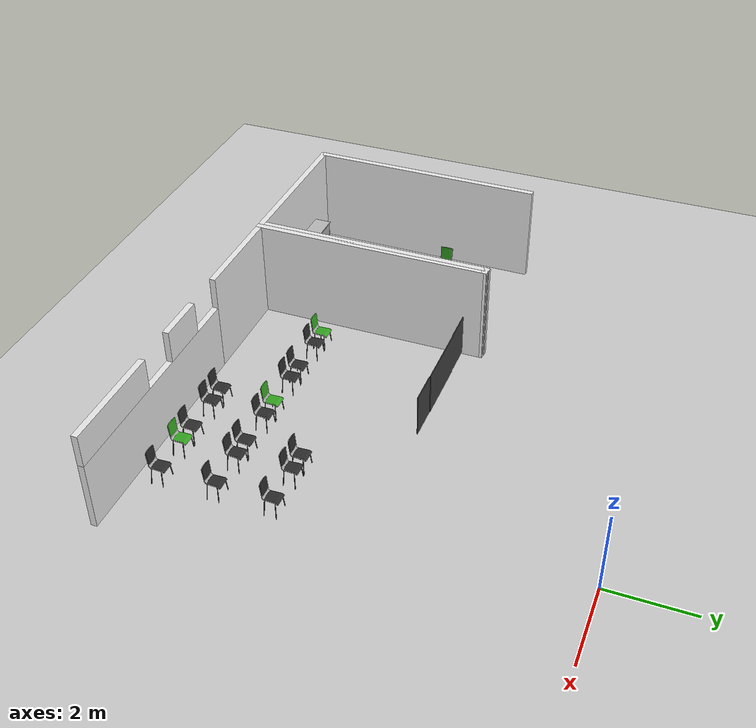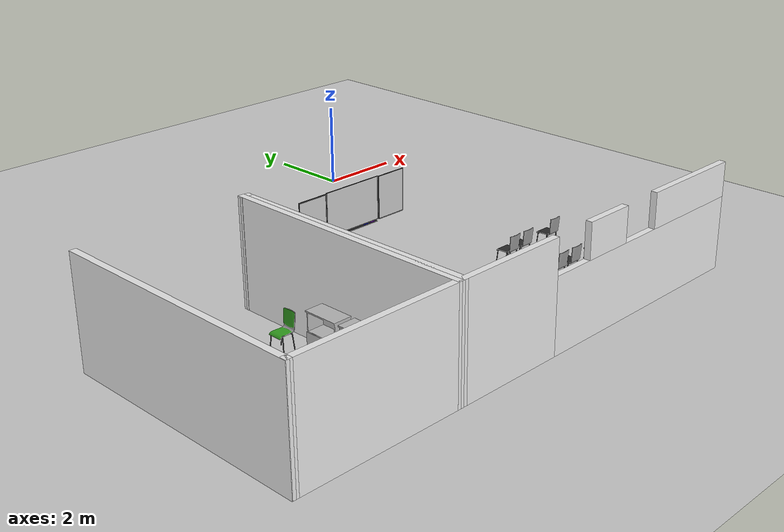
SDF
<sdf version="1.6">
 <world name="default">
  <model name="ground_plane">
   <static>1</static>
   <link name="link">
    <collision name="collision">
     <geometry><plane><normal>0 0 1</normal><size>100 100</size></plane></geometry>
     <surface><friction><ode><mu>100</mu><mu2>50</mu2></ode></friction></surface>
    </collision>
    <visual name="visual">
     <cast_shadows>0</cast_shadows>
     <geometry><plane><normal>0 0 1</normal><size>100 100</size></plane></geometry>
     <material>
      <script><uri>file://media/materials/scripts/gazebo.material</uri><name>Gazebo/Grey</name></script>
     </material>
    </visual>
   </link>
  </model>
  <model name="ucu_basic_frame.world">
   <link name="Wall_188">
    <pose>-7.05036 -11.0083 0 0 0 -1.56854</pose>
    <visual name="Wall_188_Visual">
     <pose>0 0 1.25 0 -0 0</pose>
     <geometry><box><size>5.98201 0.15 2.5</size></box></geometry>
     <material>
      <script><uri>file://media/materials/scripts/gazebo.material</uri><name>Gazebo/White</name></script>
      <ambient>0 1 0 1</ambient>
      <diffuse>1 1 1 1</diffuse>
      <specular>0 0 0 1</specular>
      <emissive>0 0 0 1</emissive>
     </material>
     <meta><layer>0</layer></meta>
    </visual>
    <collision name="Wall_188_Collision">
     <pose>0 0 1.25 0 -0 0</pose>
     <geometry><box><size>5.98201 0.15 2.5</size></box></geometry>
     <surface>
      <friction>
       <ode><mu>1</mu><mu2>1</mu2><fdir1>0 0 0</fdir1><slip1>0</slip1><slip2>0</slip2></ode>
       <torsional>
        <coefficient>1</coefficient>
        <patch_radius>0</patch_radius>
        <surface_radius>0</surface_radius>
        <use_patch_radius>1</use_patch_radius>
        <ode><slip>0</slip></ode>
       </torsional>
      </friction>
      <bounce><restitution_coefficient>0</restitution_coefficient><threshold>1e+06</threshold></bounce>
      <contact>
       <collide_without_contact>0</collide_without_contact>
       <collide_without_contact_bitmask>1</collide_without_contact_bitmask>
       <collide_bitmask>1</collide_bitmask>
       <ode>
        <soft_cfm>0</soft_cfm>
        <soft_erp>0.2</soft_erp>
        <kp>1e+13</kp>
        <kd>1</kd>
        <max_vel>0.01</max_vel>
        <min_depth>0</min_depth>
       </ode>
       <bullet>
        <split_impulse>1</split_impulse>
        <split_impulse_penetration_threshold>-0.01</split_impulse_penetration_threshold>
        <soft_cfm>0</soft_cfm>
        <soft_erp>0.2</soft_erp>
        <kp>1e+13</kp>
        <kd>1</kd>
       </bullet>
      </contact>
     </surface>
    </collision>
   </link>
   <link name="Wall_189">
    <pose>-2.90346 -13.9177 0 0 -0 0.00159</pose>
    <visual name="Wall_189_Visual_0">
     <pose>-2.9043 0 1.25 0 -0 0</pose>
     <geometry><box><size>2.62204 0.15 2.5</size></box></geometry>
     <material>
      <script><uri>file://media/materials/scripts/gazebo.material</uri><name>Gazebo/White</name></script>
      <ambient>1 1 1 1</ambient>
      <diffuse>1 1 1 1</diffuse>
      <specular>0 0 0 1</specular>
      <emissive>0 0 0 1</emissive>
     </material>
     <meta><layer>0</layer></meta>
    </visual>
    <visual name="Wall_189_Visual_1">
     <pose>1.31102 0 0.85 0 -0 0</pose>
     <geometry><box><size>5.8086 0.15 1.7</size></box></geometry>
     <material>
      <script><uri>file://media/materials/scripts/gazebo.material</uri><name>Gazebo/White</name></script>
      <ambient>1 1 1 1</ambient>
      <diffuse>1 1 1 1</diffuse>
      <specular>0 0 0 1</specular>
      <emissive>0 0 0 1</emissive>
     </material>
     <meta><layer>0</layer></meta>
    </visual>
    <visual name="Wall_189_Visual_2">
     <pose>0.003473 0 2.1 0 -0 0</pose>
     <geometry><box><size>1.19351 0.15 0.8</size></box></geometry>
     <material>
      <script><uri>file://media/materials/scripts/gazebo.material</uri><name>Gazebo/White</name></script>
      <ambient>1 1 1 1</ambient>
      <diffuse>1 1 1 1</diffuse>
      <specular>0 0 0 1</specular>
      <emissive>0 0 0 1</emissive>
     </material>
     <meta><layer>0</layer></meta>
    </visual>
    <visual name="Wall_189_Visual_3">
     <pose>2.90777 0 2.1 0 -0 0</pose>
     <geometry><box><size>2.6151 0.15 0.8</size></box></geometry>
     <material>
      <script><uri>file://media/materials/scripts/gazebo.material</uri><name>Gazebo/White</name></script>
      <ambient>1 1 1 1</ambient>
      <diffuse>1 1 1 1</diffuse>
      <specular>0 0 0 1</specular>
      <emissive>0 0 0 1</emissive>
     </material>
     <meta><layer>0</layer></meta>
    </visual>
    <collision name="Wall_189_Collision_0">
     <pose>-2.9043 0 1.25 0 -0 0</pose>
     <geometry><box><size>2.62204 0.15 2.5</size></box></geometry>
     <surface>
      <friction>
       <ode><mu>1</mu><mu2>1</mu2><fdir1>0 0 0</fdir1><slip1>0</slip1><slip2>0</slip2></ode>
       <torsional>
        <coefficient>1</coefficient>
        <patch_radius>0</patch_radius>
        <surface_radius>0</surface_radius>
        <use_patch_radius>1</use_patch_radius>
        <ode><slip>0</slip></ode>
       </torsional>
      </friction>
      <bounce><restitution_coefficient>0</restitution_coefficient><threshold>1e+06</threshold></bounce>
      <contact>
       <collide_without_contact>0</collide_without_contact>
       <collide_without_contact_bitmask>1</collide_without_contact_bitmask>
       <collide_bitmask>1</collide_bitmask>
       <ode>
        <soft_cfm>0</soft_cfm>
        <soft_erp>0.2</soft_erp>
        <kp>1e+13</kp>
        <kd>1</kd>
        <max_vel>0.01</max_vel>
        <min_depth>0</min_depth>
       </ode>
       <bullet>
        <split_impulse>1</split_impulse>
        <split_impulse_penetration_threshold>-0.01</split_impulse_penetration_threshold>
        <soft_cfm>0</soft_cfm>
        <soft_erp>0.2</soft_erp>
        <kp>1e+13</kp>
        <kd>1</kd>
       </bullet>
      </contact>
     </surface>
    </collision>
    <collision name="Wall_189_Collision_1">
     <pose>1.31102 0 0.85 0 -0 0</pose>
     <geometry><box><size>5.8086 0.15 1.7</size></box></geometry>
     <surface>
      <friction>
       <ode><mu>1</mu><mu2>1</mu2><fdir1>0 0 0</fdir1><slip1>0</slip1><slip2>0</slip2></ode>
       <torsional>
        <coefficient>1</coefficient>
        <patch_radius>0</patch_radius>
        <surface_radius>0</surface_radius>
        <use_patch_radius>1</use_patch_radius>
        <ode><slip>0</slip></ode>
       </torsional>
      </friction>
      <bounce><restitution_coefficient>0</restitution_coefficient><threshold>1e+06</threshold></bounce>
      <contact>
       <collide_without_contact>0</collide_without_contact>
       <collide_without_contact_bitmask>1</collide_without_contact_bitmask>
       <collide_bitmask>1</collide_bitmask>
       <ode>
        <soft_cfm>0</soft_cfm>
        <soft_erp>0.2</soft_erp>
        <kp>1e+13</kp>
        <kd>1</kd>
        <max_vel>0.01</max_vel>
        <min_depth>0</min_depth>
       </ode>
       <bullet>
        <split_impulse>1</split_impulse>
        <split_impulse_penetration_threshold>-0.01</split_impulse_penetration_threshold>
        <soft_cfm>0</soft_cfm>
        <soft_erp>0.2</soft_erp>
        <kp>1e+13</kp>
        <kd>1</kd>
       </bullet>
      </contact>
     </surface>
    </collision>
    <collision name="Wall_189_Collision_3">
     <pose>2.90777 0 2.1 0 -0 0</pose>
     <geometry><box><size>2.6151 0.15 0.8</size></box></geometry>
     <surface>
      <friction>
       <ode><mu>1</mu><mu2>1</mu2><fdir1>0 0 0</fdir1><slip1>0</slip1><slip2>0</slip2></ode>
       <torsional>
        <coefficient>1</coefficient>
        <patch_radius>0</patch_radius>
        <surface_radius>0</surface_radius>
        <use_patch_radius>1</use_patch_radius>
        <ode><slip>0</slip></ode>
       </torsional>
      </friction>
      <bounce><restitution_coefficient>0</restitution_coefficient><threshold>1e+06</threshold></bounce>
      <contact>
       <collide_without_contact>0</collide_without_contact>
       <collide_without_contact_bitmask>1</collide_without_contact_bitmask>
       <collide_bitmask>1</collide_bitmask>
       <ode>
        <soft_cfm>0</soft_cfm>
        <soft_erp>0.2</soft_erp>
        <kp>1e+13</kp>
        <kd>1</kd>
        <max_vel>0.01</max_vel>
        <min_depth>0</min_depth>
       </ode>
       <bullet>
        <split_impulse>1</split_impulse>
        <split_impulse_penetration_threshold>-0.01</split_impulse_penetration_threshold>
        <soft_cfm>0</soft_cfm>
        <soft_erp>0.2</soft_erp>
        <kp>1e+13</kp>
        <kd>1</kd>
       </bullet>
      </contact>
     </surface>
    </collision>
    <collision name="Wall_189_Collision_2">
     <pose>0.003473 0 2.1 0 -0 0</pose>
     <geometry><box><size>1.19351 0.15 0.8</size></box></geometry>
     <surface>
      <friction>
       <ode><mu>1</mu><mu2>1</mu2><fdir1>0 0 0</fdir1><slip1>0</slip1><slip2>0</slip2></ode>
       <torsional>
        <coefficient>1</coefficient>
        <patch_radius>0</patch_radius>
        <surface_radius>0</surface_radius>
        <use_patch_radius>1</use_patch_radius>
        <ode><slip>0</slip></ode>
       </torsional>
      </friction>
      <bounce><restitution_coefficient>0</restitution_coefficient><threshold>1e+06</threshold></bounce>
      <contact>
       <collide_without_contact>0</collide_without_contact>
       <collide_without_contact_bitmask>1</collide_without_contact_bitmask>
       <collide_bitmask>1</collide_bitmask>
       <ode>
        <soft_cfm>0</soft_cfm>
        <soft_erp>0.2</soft_erp>
        <kp>1e+13</kp>
        <kd>1</kd>
        <max_vel>0.01</max_vel>
        <min_depth>0</min_depth>
       </ode>
       <bullet>
        <split_impulse>1</split_impulse>
        <split_impulse_penetration_threshold>-0.01</split_impulse_penetration_threshold>
        <soft_cfm>0</soft_cfm>
        <soft_erp>0.2</soft_erp>
        <kp>1e+13</kp>
        <kd>1</kd>
       </bullet>
      </contact>
     </surface>
    </collision>
   </link>
   <link name="Wall_200">
    <pose>-7.1096 -8.08571 0 0 -0 3.01724</pose>
    <visual name="Wall_200_Visual">
     <pose>0 0 1.25 0 -0 0</pose>
     <geometry><box><size>0.256138 0.15 2.5</size></box></geometry>
     <material>
      <script><uri>file://media/materials/scripts/gazebo.material</uri><name>Gazebo/White</name></script>
      <ambient>1 1 1 1</ambient>
      <diffuse>1 1 1 1</diffuse>
      <specular>0 0 0 1</specular>
      <emissive>0 0 0 1</emissive>
     </material>
     <meta><layer>0</layer></meta>
    </visual>
    <collision name="Wall_200_Collision">
     <pose>0 0 1.25 0 -0 0</pose>
     <geometry><box><size>0.256138 0.15 2.5</size></box></geometry>
     <surface>
      <friction>
       <ode><mu>1</mu><mu2>1</mu2><fdir1>0 0 0</fdir1><slip1>0</slip1><slip2>0</slip2></ode>
       <torsional>
        <coefficient>1</coefficient>
        <patch_radius>0</patch_radius>
        <surface_radius>0</surface_radius>
        <use_patch_radius>1</use_patch_radius>
        <ode><slip>0</slip></ode>
       </torsional>
      </friction>
      <bounce><restitution_coefficient>0</restitution_coefficient><threshold>1e+06</threshold></bounce>
      <contact>
       <collide_without_contact>0</collide_without_contact>
       <collide_without_contact_bitmask>1</collide_without_contact_bitmask>
       <collide_bitmask>1</collide_bitmask>
       <ode>
        <soft_cfm>0</soft_cfm>
        <soft_erp>0.2</soft_erp>
        <kp>1e+13</kp>
        <kd>1</kd>
        <max_vel>0.01</max_vel>
        <min_depth>0</min_depth>
       </ode>
       <bullet>
        <split_impulse>1</split_impulse>
        <split_impulse_penetration_threshold>-0.01</split_impulse_penetration_threshold>
        <soft_cfm>0</soft_cfm>
        <soft_erp>0.2</soft_erp>
        <kp>1e+13</kp>
        <kd>1</kd>
       </bullet>
      </contact>
     </surface>
    </collision>
   </link>
   <link name="Wall_201">
    <pose>-7.16884 -11.0017 0 0 0 -1.57305</pose>
    <visual name="Wall_201_Visual">
     <pose>0 0 1.25 0 -0 0</pose>
     <geometry><box><size>5.99517 0.15 2.5</size></box></geometry>
     <material>
      <script><uri>file://media/materials/scripts/gazebo.material</uri><name>Gazebo/White</name></script>
      <ambient>1 1 1 1</ambient>
      <diffuse>1 1 1 1</diffuse>
      <specular>0 0 0 1</specular>
      <emissive>0 0 0 1</emissive>
     </material>
     <meta><layer>0</layer></meta>
    </visual>
    <collision name="Wall_201_Collision">
     <pose>0 0 1.25 0 -0 0</pose>
     <geometry><box><size>5.99517 0.15 2.5</size></box></geometry>
     <surface>
      <friction>
       <ode><mu>1</mu><mu2>1</mu2><fdir1>0 0 0</fdir1><slip1>0</slip1><slip2>0</slip2></ode>
       <torsional>
        <coefficient>1</coefficient>
        <patch_radius>0</patch_radius>
        <surface_radius>0</surface_radius>
        <use_patch_radius>1</use_patch_radius>
        <ode><slip>0</slip></ode>
       </torsional>
      </friction>
      <bounce><restitution_coefficient>0</restitution_coefficient><threshold>1e+06</threshold></bounce>
      <contact>
       <collide_without_contact>0</collide_without_contact>
       <collide_without_contact_bitmask>1</collide_without_contact_bitmask>
       <collide_bitmask>1</collide_bitmask>
       <ode>
        <soft_cfm>0</soft_cfm>
        <soft_erp>0.2</soft_erp>
        <kp>1e+13</kp>
        <kd>1</kd>
        <max_vel>0.01</max_vel>
        <min_depth>0</min_depth>
       </ode>
       <bullet>
        <split_impulse>1</split_impulse>
        <split_impulse_penetration_threshold>-0.01</split_impulse_penetration_threshold>
        <soft_cfm>0</soft_cfm>
        <soft_erp>0.2</soft_erp>
        <kp>1e+13</kp>
        <kd>1</kd>
       </bullet>
      </contact>
     </surface>
    </collision>
   </link>
   <link name="Wall_202">
    <pose>-9.0909 -13.9177 0 0 -0 3.13816</pose>
    <visual name="Wall_202_Visual">
     <pose>0 0 1.25 0 -0 0</pose>
     <geometry><box><size>3.98095 0.15 2.5</size></box></geometry>
     <material>
      <script><uri>file://media/materials/scripts/gazebo.material</uri><name>Gazebo/White</name></script>
      <ambient>1 1 1 1</ambient>
      <diffuse>1 1 1 1</diffuse>
      <specular>0 0 0 1</specular>
      <emissive>0 0 0 1</emissive>
     </material>
     <meta><layer>0</layer></meta>
    </visual>
    <collision name="Wall_202_Collision">
     <pose>0 0 1.25 0 -0 0</pose>
     <geometry><box><size>3.98095 0.15 2.5</size></box></geometry>
     <surface>
      <friction>
       <ode><mu>1</mu><mu2>1</mu2><fdir1>0 0 0</fdir1><slip1>0</slip1><slip2>0</slip2></ode>
       <torsional>
        <coefficient>1</coefficient>
        <patch_radius>0</patch_radius>
        <surface_radius>0</surface_radius>
        <use_patch_radius>1</use_patch_radius>
        <ode><slip>0</slip></ode>
       </torsional>
      </friction>
      <bounce><restitution_coefficient>0</restitution_coefficient><threshold>1e+06</threshold></bounce>
      <contact>
       <collide_without_contact>0</collide_without_contact>
       <collide_without_contact_bitmask>1</collide_without_contact_bitmask>
       <collide_bitmask>1</collide_bitmask>
       <ode>
        <soft_cfm>0</soft_cfm>
        <soft_erp>0.2</soft_erp>
        <kp>1e+13</kp>
        <kd>1</kd>
        <max_vel>0.01</max_vel>
        <min_depth>0</min_depth>
       </ode>
       <bullet>
        <split_impulse>1</split_impulse>
        <split_impulse_penetration_threshold>-0.01</split_impulse_penetration_threshold>
        <soft_cfm>0</soft_cfm>
        <soft_erp>0.2</soft_erp>
        <kp>1e+13</kp>
        <kd>1</kd>
       </bullet>
      </contact>
     </surface>
    </collision>
   </link>
   <link name="Wall_203">
    <pose>-11.0064 -10.9951 0 0 -0 1.56628</pose>
    <visual name="Wall_203_Visual">
     <pose>0 0 1.25 0 -0 0</pose>
     <geometry><box><size>5.98199 0.15 2.5</size></box></geometry>
     <material>
      <script><uri>file://media/materials/scripts/gazebo.material</uri><name>Gazebo/White</name></script>
      <ambient>1 1 1 1</ambient>
      <diffuse>1 1 1 1</diffuse>
      <specular>0 0 0 1</specular>
      <emissive>0 0 0 1</emissive>
     </material>
     <meta><layer>0</layer></meta>
    </visual>
    <collision name="Wall_203_Collision">
     <pose>0 0 1.25 0 -0 0</pose>
     <geometry><box><size>5.98199 0.15 2.5</size></box></geometry>
     <surface>
      <friction>
       <ode><mu>1</mu><mu2>1</mu2><fdir1>0 0 0</fdir1><slip1>0</slip1><slip2>0</slip2></ode>
       <torsional>
        <coefficient>1</coefficient>
        <patch_radius>0</patch_radius>
        <surface_radius>0</surface_radius>
        <use_patch_radius>1</use_patch_radius>
        <ode><slip>0</slip></ode>
       </torsional>
      </friction>
      <bounce><restitution_coefficient>0</restitution_coefficient><threshold>1e+06</threshold></bounce>
      <contact>
       <collide_without_contact>0</collide_without_contact>
       <collide_without_contact_bitmask>1</collide_without_contact_bitmask>
       <collide_bitmask>1</collide_bitmask>
       <ode>
        <soft_cfm>0</soft_cfm>
        <soft_erp>0.2</soft_erp>
        <kp>1e+13</kp>
        <kd>1</kd>
        <max_vel>0.01</max_vel>
        <min_depth>0</min_depth>
       </ode>
       <bullet>
        <split_impulse>1</split_impulse>
        <split_impulse_penetration_threshold>-0.01</split_impulse_penetration_threshold>
        <soft_cfm>0</soft_cfm>
        <soft_erp>0.2</soft_erp>
        <kp>1e+13</kp>
        <kd>1</kd>
       </bullet>
      </contact>
     </surface>
    </collision>
   </link>
   <static>1</static>
   <pose>0.7577 3.6363 0 0 -0 0</pose>
  </model>
  <model name="locker_009_1">
   <pose>-6.70998 -7.24002 0.450774 0 0 -1.57003</pose>
   <static>0</static>
   <link name="model_body">
    <visual name="visual">
     <geometry>
      <mesh><uri>model://robert_gazebo/meshes/locker_008_visual.dae</uri><scale>1 1 1</scale></mesh>
     </geometry>
    </visual>
    <collision name="collision">
     <geometry>
      <mesh><uri>model://robert_gazebo/meshes/locker_008_collision.dae</uri><scale>1 1 1</scale></mesh>
     </geometry>
    </collision>
    <inertial>
     <inertia><ixx>0.69</ixx><ixy>0</ixy><ixz>0</ixz><iyy>1.19</iyy><iyz>0</iyz><izz>0.78</izz></inertia>
     <mass>10</mass>
    </inertial>
   </link>
  </model>
  <model name="locker_009_2">
   <pose>-6.70998 -8.15002 0.450774 0 0 -1.57003</pose>
   <static>0</static>
   <link name="model_body">
    <visual name="visual">
     <geometry>
      <mesh><uri>model://robert_gazebo/meshes/locker_008_visual.dae</uri><scale>1 1 1</scale></mesh>
     </geometry>
    </visual>
    <collision name="collision">
     <geometry>
      <mesh><uri>model://robert_gazebo/meshes/locker_008_collision.dae</uri><scale>1 1 1</scale></mesh>
     </geometry>
    </collision>
    <inertial>
     <inertia><ixx>0.69</ixx><ixy>0</ixy><ixz>0</ixz><iyy>1.19</iyy><iyz>0</iyz><izz>0.78</izz></inertia>
     <mass>10</mass>
    </inertial>
   </link>
  </model>
  <model name="locker_009_3">
   <pose>-8.9789 -9.99697 0.450774 0 -0 3.13814</pose>
   <static>0</static>
   <link name="model_body">
    <visual name="visual">
     <geometry>
      <mesh><uri>model://robert_gazebo/meshes/locker_008_visual.dae</uri><scale>1 1 1</scale></mesh>
     </geometry>
    </visual>
    <collision name="collision">
     <geometry>
      <mesh><uri>model://robert_gazebo/meshes/locker_008_collision.dae</uri><scale>1 1 1</scale></mesh>
     </geometry>
    </collision>
    <inertial>
     <inertia><ixx>0.69</ixx><ixy>0</ixy><ixz>0</ixz><iyy>1.19</iyy><iyz>0</iyz><izz>0.78</izz></inertia>
     <mass>10</mass>
    </inertial>
   </link>
  </model>
  <model name="locker_009_4">
   <pose>-8.08001 -9.985 0.450775 5e-06 -0 -3.14</pose>
   <static>0</static>
   <link name="model_body">
    <visual name="visual">
     <geometry>
      <mesh><uri>model://robert_gazebo/meshes/locker_008_visual.dae</uri><scale>1 1 1</scale></mesh>
     </geometry>
    </visual>
    <collision name="collision">
     <geometry>
      <mesh><uri>model://robert_gazebo/meshes/locker_008_collision.dae</uri><scale>1 1 1</scale></mesh>
     </geometry>
    </collision>
    <inertial>
     <inertia><ixx>0.69</ixx><ixy>0</ixy><ixz>0</ixz><iyy>1.19</iyy><iyz>0</iyz><izz>0.78</izz></inertia>
     <mass>10</mass>
    </inertial>
   </link>
  </model>
  <model name="classroom_chair_008_1_1_2">
   <pose>0.349927 -6.93997 0.445362 2.8e-05 0.000141 3.1399</pose>
   <static>0</static>
   <link name="model_body">
    <visual name="visual">
     <geometry>
      <mesh><uri>model://robert_gazebo/meshes/classroom_chair_grey_visual.dae</uri><scale>100 100 100</scale></mesh>
     </geometry>
    </visual>
    <collision name="collision">
     <geometry>
      <mesh><uri>model://robert_gazebo/meshes/classroom_chair_collision.dae</uri><scale>1 1 1</scale></mesh>
     </geometry>
    </collision>
    <inertial>
     <inertia><ixx>0.34</ixx><ixy>0</ixy><ixz>0</ixz><iyy>0.34</iyy><iyz>0</iyz><izz>0.18</izz></inertia>
     <mass>5</mass>
    </inertial>
   </link>
  </model>
  <model name="classroom_chair_008_1_2_1">
   <pose>-0.610081 -6.93996 0.44536 6e-06 0.000124 3.13981</pose>
   <static>0</static>
   <link name="model_body">
    <visual name="visual">
     <geometry>
      <mesh><uri>model://robert_gazebo/meshes/classroom_chair_grey_visual.dae</uri><scale>100 100 100</scale></mesh>
     </geometry>
    </visual>
    <collision name="collision">
     <geometry>
      <mesh><uri>model://robert_gazebo/meshes/classroom_chair_collision.dae</uri><scale>1 1 1</scale></mesh>
     </geometry>
    </collision>
    <inertial>
     <inertia><ixx>0.34</ixx><ixy>0</ixy><ixz>0</ixz><iyy>0.34</iyy><iyz>0</iyz><izz>0.18</izz></inertia>
     <mass>5</mass>
    </inertial>
   </link>
  </model>
  <model name="classroom_chair_008_1_2_2">
   <pose>-1.07007 -6.93999 0.44536 3e-06 0.000128 3.13992</pose>
   <static>0</static>
   <link name="model_body">
    <visual name="visual">
     <geometry>
      <mesh><uri>model://robert_gazebo/meshes/classroom_chair_grey_visual.dae</uri><scale>100 100 100</scale></mesh>
     </geometry>
    </visual>
    <collision name="collision">
     <geometry>
      <mesh><uri>model://robert_gazebo/meshes/classroom_chair_collision.dae</uri><scale>1 1 1</scale></mesh>
     </geometry>
    </collision>
    <inertial>
     <inertia><ixx>0.34</ixx><ixy>0</ixy><ixz>0</ixz><iyy>0.34</iyy><iyz>0</iyz><izz>0.18</izz></inertia>
     <mass>5</mass>
    </inertial>
   </link>
  </model>
  <model name="classroom_chair_008_1_2_1">
   <pose>-0.610081 -6.93996 0.44536 6e-06 0.000124 3.13981</pose>
   <static>0</static>
   <link name="model_body">
    <visual name="visual">
     <geometry>
      <mesh><uri>model://robert_gazebo/meshes/classroom_chair_grey_visual.dae</uri><scale>100 100 100</scale></mesh>
     </geometry>
    </visual>
    <collision name="collision">
     <geometry>
      <mesh><uri>model://robert_gazebo/meshes/classroom_chair_collision.dae</uri><scale>1 1 1</scale></mesh>
     </geometry>
    </collision>
    <inertial>
     <inertia><ixx>0.34</ixx><ixy>0</ixy><ixz>0</ixz><iyy>0.34</iyy><iyz>0</iyz><izz>0.18</izz></inertia>
     <mass>5</mass>
    </inertial>
   </link>
  </model>
  <model name="classroom_chair_008_1_2_2">
   <pose>-1.07007 -6.93999 0.44536 3e-06 0.000128 3.13992</pose>
   <static>0</static>
   <link name="model_body">
    <visual name="visual">
     <geometry>
      <mesh><uri>model://robert_gazebo/meshes/classroom_chair_grey_visual.dae</uri><scale>100 100 100</scale></mesh>
     </geometry>
    </visual>
    <collision name="collision">
     <geometry>
      <mesh><uri>model://robert_gazebo/meshes/classroom_chair_collision.dae</uri><scale>1 1 1</scale></mesh>
     </geometry>
    </collision>
    <inertial>
     <inertia><ixx>0.34</ixx><ixy>0</ixy><ixz>0</ixz><iyy>0.34</iyy><iyz>0</iyz><izz>0.18</izz></inertia>
     <mass>5</mass>
    </inertial>
   </link>
  </model>
  <model name="classroom_chair_008_2_1_2">
   <pose>0.349933 -8.28998 0.445362 7e-06 0.000131 3.13991</pose>
   <static>0</static>
   <link name="model_body">
    <visual name="visual">
     <geometry>
      <mesh><uri>model://robert_gazebo/meshes/classroom_chair_grey_visual.dae</uri><scale>100 100 100</scale></mesh>
     </geometry>
    </visual>
    <collision name="collision">
     <geometry>
      <mesh><uri>model://robert_gazebo/meshes/classroom_chair_collision.dae</uri><scale>1 1 1</scale></mesh>
     </geometry>
    </collision>
    <inertial>
     <inertia><ixx>0.34</ixx><ixy>0</ixy><ixz>0</ixz><iyy>0.34</iyy><iyz>0</iyz><izz>0.18</izz></inertia>
     <mass>5</mass>
    </inertial>
   </link>
  </model>
  <model name="classroom_chair_008_2_2_1">
   <pose>-0.610065 -8.28999 0.44536 3e-06 0.000131 3.13993</pose>
   <static>0</static>
   <link name="model_body">
    <visual name="visual">
     <geometry>
      <mesh><uri>model://robert_gazebo/meshes/classroom_chair_grey_visual.dae</uri><scale>100 100 100</scale></mesh>
     </geometry>
    </visual>
    <collision name="collision">
     <geometry>
      <mesh><uri>model://robert_gazebo/meshes/classroom_chair_collision.dae</uri><scale>1 1 1</scale></mesh>
     </geometry>
    </collision>
    <inertial>
     <inertia><ixx>0.34</ixx><ixy>0</ixy><ixz>0</ixz><iyy>0.34</iyy><iyz>0</iyz><izz>0.18</izz></inertia>
     <mass>5</mass>
    </inertial>
   </link>
  </model>
  <model name="classroom_chair_008_2_2_2">
   <pose>-1.07006 -8.28998 0.445361 2e-06 0.000123 3.1399</pose>
   <static>0</static>
   <link name="model_body">
    <visual name="visual">
     <geometry>
      <mesh><uri>model://robert_gazebo/meshes/classroom_chair_grey_visual.dae</uri><scale>100 100 100</scale></mesh>
     </geometry>
    </visual>
    <collision name="collision">
     <geometry>
      <mesh><uri>model://robert_gazebo/meshes/classroom_chair_collision.dae</uri><scale>1 1 1</scale></mesh>
     </geometry>
    </collision>
    <inertial>
     <inertia><ixx>0.34</ixx><ixy>0</ixy><ixz>0</ixz><iyy>0.34</iyy><iyz>0</iyz><izz>0.18</izz></inertia>
     <mass>5</mass>
    </inertial>
   </link>
  </model>
  <model name="classroom_chair_008_2_3_1">
   <pose>-2.03007 -8.28997 0.445361 2e-06 0.000124 3.13985</pose>
   <static>0</static>
   <link name="model_body">
    <visual name="visual">
     <geometry>
      <mesh><uri>model://robert_gazebo/meshes/classroom_chair_grey_visual.dae</uri><scale>100 100 100</scale></mesh>
     </geometry>
    </visual>
    <collision name="collision">
     <geometry>
      <mesh><uri>model://robert_gazebo/meshes/classroom_chair_collision.dae</uri><scale>1 1 1</scale></mesh>
     </geometry>
    </collision>
    <inertial>
     <inertia><ixx>0.34</ixx><ixy>0</ixy><ixz>0</ixz><iyy>0.34</iyy><iyz>0</iyz><izz>0.18</izz></inertia>
     <mass>5</mass>
    </inertial>
   </link>
  </model>
  <model name="classroom_chair_008_2_3_2">
   <pose>-2.50008 -8.28997 0.44536 6e-06 0.000124 3.13983</pose>
   <static>0</static>
   <link name="model_body">
    <visual name="visual">
     <geometry>
      <mesh>
       <uri>model://robert_gazebo/meshes/classroom_chair_green_visual.dae</uri>
       <scale>100 100 100</scale>
      </mesh>
     </geometry>
    </visual>
    <collision name="collision">
     <geometry>
      <mesh><uri>model://robert_gazebo/meshes/classroom_chair_collision.dae</uri><scale>1 1 1</scale></mesh>
     </geometry>
    </collision>
    <inertial>
     <inertia><ixx>0.34</ixx><ixy>0</ixy><ixz>0</ixz><iyy>0.34</iyy><iyz>0</iyz><izz>0.18</izz></inertia>
     <mass>5</mass>
    </inertial>
   </link>
  </model>
  <model name="classroom_chair_008_2_4_1">
   <pose>-3.45008 -8.28997 0.44536 6e-06 0.000124 3.13983</pose>
   <static>0</static>
   <link name="model_body">
    <visual name="visual">
     <geometry>
      <mesh><uri>model://robert_gazebo/meshes/classroom_chair_grey_visual.dae</uri><scale>100 100 100</scale></mesh>
     </geometry>
    </visual>
    <collision name="collision">
     <geometry>
      <mesh><uri>model://robert_gazebo/meshes/classroom_chair_collision.dae</uri><scale>1 1 1</scale></mesh>
     </geometry>
    </collision>
    <inertial>
     <inertia><ixx>0.34</ixx><ixy>0</ixy><ixz>0</ixz><iyy>0.34</iyy><iyz>0</iyz><izz>0.18</izz></inertia>
     <mass>5</mass>
    </inertial>
   </link>
  </model>
  <model name="classroom_chair_008_2_4_2">
   <pose>-3.91007 -8.28997 0.445359 1.3e-05 0.000121 3.13986</pose>
   <static>0</static>
   <link name="model_body">
    <visual name="visual">
     <geometry>
      <mesh><uri>model://robert_gazebo/meshes/classroom_chair_grey_visual.dae</uri><scale>100 100 100</scale></mesh>
     </geometry>
    </visual>
    <collision name="collision">
     <geometry>
      <mesh><uri>model://robert_gazebo/meshes/classroom_chair_collision.dae</uri><scale>1 1 1</scale></mesh>
     </geometry>
    </collision>
    <inertial>
     <inertia><ixx>0.34</ixx><ixy>0</ixy><ixz>0</ixz><iyy>0.34</iyy><iyz>0</iyz><izz>0.18</izz></inertia>
     <mass>5</mass>
    </inertial>
   </link>
  </model>
  <model name="classroom_chair_008_2_5_1">
   <pose>-4.87006 -8.28998 0.445361 2e-06 0.000124 3.1399</pose>
   <static>0</static>
   <link name="model_body">
    <visual name="visual">
     <geometry>
      <mesh><uri>model://robert_gazebo/meshes/classroom_chair_grey_visual.dae</uri><scale>100 100 100</scale></mesh>
     </geometry>
    </visual>
    <collision name="collision">
     <geometry>
      <mesh><uri>model://robert_gazebo/meshes/classroom_chair_collision.dae</uri><scale>1 1 1</scale></mesh>
     </geometry>
    </collision>
    <inertial>
     <inertia><ixx>0.34</ixx><ixy>0</ixy><ixz>0</ixz><iyy>0.34</iyy><iyz>0</iyz><izz>0.18</izz></inertia>
     <mass>5</mass>
    </inertial>
   </link>
  </model>
  <model name="classroom_chair_008_2_5_2">
   <pose>-5.33006 -8.28998 0.445361 2e-06 0.000124 3.13991</pose>
   <static>0</static>
   <link name="model_body">
    <visual name="visual">
     <geometry>
      <mesh>
       <uri>model://robert_gazebo/meshes/classroom_chair_green_visual.dae</uri>
       <scale>100 100 100</scale>
      </mesh>
     </geometry>
    </visual>
    <collision name="collision">
     <geometry>
      <mesh><uri>model://robert_gazebo/meshes/classroom_chair_collision.dae</uri><scale>1 1 1</scale></mesh>
     </geometry>
    </collision>
    <inertial>
     <inertia><ixx>0.34</ixx><ixy>0</ixy><ixz>0</ixz><iyy>0.34</iyy><iyz>0</iyz><izz>0.18</izz></inertia>
     <mass>5</mass>
    </inertial>
   </link>
  </model>
  <model name="classroom_chair_008_3_1_2">
   <pose>0.349933 -9.63998 0.445362 7e-06 0.000131 3.13991</pose>
   <static>0</static>
   <link name="model_body">
    <visual name="visual">
     <geometry>
      <mesh><uri>model://robert_gazebo/meshes/classroom_chair_grey_visual.dae</uri><scale>100 100 100</scale></mesh>
     </geometry>
    </visual>
    <collision name="collision">
     <geometry>
      <mesh><uri>model://robert_gazebo/meshes/classroom_chair_collision.dae</uri><scale>1 1 1</scale></mesh>
     </geometry>
    </collision>
    <inertial>
     <inertia><ixx>0.34</ixx><ixy>0</ixy><ixz>0</ixz><iyy>0.34</iyy><iyz>0</iyz><izz>0.18</izz></inertia>
     <mass>5</mass>
    </inertial>
   </link>
  </model>
  <model name="classroom_chair_008_3_2_1">
   <pose>-0.610065 -9.63999 0.44536 3e-06 0.000131 3.13993</pose>
   <static>0</static>
   <link name="model_body">
    <visual name="visual">
     <geometry>
      <mesh>
       <uri>model://robert_gazebo/meshes/classroom_chair_green_visual.dae</uri>
       <scale>100 100 100</scale>
      </mesh>
     </geometry>
    </visual>
    <collision name="collision">
     <geometry>
      <mesh><uri>model://robert_gazebo/meshes/classroom_chair_collision.dae</uri><scale>1 1 1</scale></mesh>
     </geometry>
    </collision>
    <inertial>
     <inertia><ixx>0.34</ixx><ixy>0</ixy><ixz>0</ixz><iyy>0.34</iyy><iyz>0</iyz><izz>0.18</izz></inertia>
     <mass>5</mass>
    </inertial>
   </link>
  </model>
  <model name="classroom_chair_008_3_2_2">
   <pose>-1.07006 -9.63998 0.445361 2e-06 0.000123 3.1399</pose>
   <static>0</static>
   <link name="model_body">
    <visual name="visual">
     <geometry>
      <mesh><uri>model://robert_gazebo/meshes/classroom_chair_grey_visual.dae</uri><scale>100 100 100</scale></mesh>
     </geometry>
    </visual>
    <collision name="collision">
     <geometry>
      <mesh><uri>model://robert_gazebo/meshes/classroom_chair_collision.dae</uri><scale>1 1 1</scale></mesh>
     </geometry>
    </collision>
    <inertial>
     <inertia><ixx>0.34</ixx><ixy>0</ixy><ixz>0</ixz><iyy>0.34</iyy><iyz>0</iyz><izz>0.18</izz></inertia>
     <mass>5</mass>
    </inertial>
   </link>
  </model>
  <model name="classroom_chair_008_3_3_1">
   <pose>-2.03007 -9.63997 0.445361 2e-06 0.000124 3.13985</pose>
   <static>0</static>
   <link name="model_body">
    <visual name="visual">
     <geometry>
      <mesh><uri>model://robert_gazebo/meshes/classroom_chair_grey_visual.dae</uri><scale>100 100 100</scale></mesh>
     </geometry>
    </visual>
    <collision name="collision">
     <geometry>
      <mesh><uri>model://robert_gazebo/meshes/classroom_chair_collision.dae</uri><scale>1 1 1</scale></mesh>
     </geometry>
    </collision>
    <inertial>
     <inertia><ixx>0.34</ixx><ixy>0</ixy><ixz>0</ixz><iyy>0.34</iyy><iyz>0</iyz><izz>0.18</izz></inertia>
     <mass>5</mass>
    </inertial>
   </link>
  </model>
  <model name="classroom_chair_008_3_3_2">
   <pose>-2.50008 -9.63997 0.44536 6e-06 0.000124 3.13983</pose>
   <static>0</static>
   <link name="model_body">
    <visual name="visual">
     <geometry>
      <mesh><uri>model://robert_gazebo/meshes/classroom_chair_grey_visual.dae</uri><scale>100 100 100</scale></mesh>
     </geometry>
    </visual>
    <collision name="collision">
     <geometry>
      <mesh><uri>model://robert_gazebo/meshes/classroom_chair_collision.dae</uri><scale>1 1 1</scale></mesh>
     </geometry>
    </collision>
    <inertial>
     <inertia><ixx>0.34</ixx><ixy>0</ixy><ixz>0</ixz><iyy>0.34</iyy><iyz>0</iyz><izz>0.18</izz></inertia>
     <mass>5</mass>
    </inertial>
   </link>
  </model>
  <model name="classroom_chair_008_2_4_1">
   <pose>-3.45008 -8.28997 0.44536 6e-06 0.000124 3.13983</pose>
   <static>0</static>
   <link name="model_body">
    <visual name="visual">
     <geometry>
      <mesh><uri>model://robert_gazebo/meshes/classroom_chair_grey_visual.dae</uri><scale>100 100 100</scale></mesh>
     </geometry>
    </visual>
    <collision name="collision">
     <geometry>
      <mesh><uri>model://robert_gazebo/meshes/classroom_chair_collision.dae</uri><scale>1 1 1</scale></mesh>
     </geometry>
    </collision>
    <inertial>
     <inertia><ixx>0.34</ixx><ixy>0</ixy><ixz>0</ixz><iyy>0.34</iyy><iyz>0</iyz><izz>0.18</izz></inertia>
     <mass>5</mass>
    </inertial>
   </link>
  </model>
  <model name="classroom_chair_008_2_4_2">
   <pose>-3.91007 -8.28997 0.445359 1.3e-05 0.000121 3.13986</pose>
   <static>0</static>
   <link name="model_body">
    <visual name="visual">
     <geometry>
      <mesh><uri>model://robert_gazebo/meshes/classroom_chair_grey_visual.dae</uri><scale>100 100 100</scale></mesh>
     </geometry>
    </visual>
    <collision name="collision">
     <geometry>
      <mesh><uri>model://robert_gazebo/meshes/classroom_chair_collision.dae</uri><scale>1 1 1</scale></mesh>
     </geometry>
    </collision>
    <inertial>
     <inertia><ixx>0.34</ixx><ixy>0</ixy><ixz>0</ixz><iyy>0.34</iyy><iyz>0</iyz><izz>0.18</izz></inertia>
     <mass>5</mass>
    </inertial>
   </link>
  </model>
  <model name="classroom_chair_008_2_5_1">
   <pose>-4.87006 -8.28998 0.445361 2e-06 0.000124 3.1399</pose>
   <static>0</static>
   <link name="model_body">
    <visual name="visual">
     <geometry>
      <mesh><uri>model://robert_gazebo/meshes/classroom_chair_grey_visual.dae</uri><scale>100 100 100</scale></mesh>
     </geometry>
    </visual>
    <collision name="collision">
     <geometry>
      <mesh><uri>model://robert_gazebo/meshes/classroom_chair_collision.dae</uri><scale>1 1 1</scale></mesh>
     </geometry>
    </collision>
    <inertial>
     <inertia><ixx>0.34</ixx><ixy>0</ixy><ixz>0</ixz><iyy>0.34</iyy><iyz>0</iyz><izz>0.18</izz></inertia>
     <mass>5</mass>
    </inertial>
   </link>
  </model>
  <model name="classroom_chair_008_2_5_2">
   <pose>-5.33006 -8.28998 0.445361 2e-06 0.000124 3.13991</pose>
   <static>0</static>
   <link name="model_body">
    <visual name="visual">
     <geometry>
      <mesh>
       <uri>model://robert_gazebo/meshes/classroom_chair_green_visual.dae</uri>
       <scale>100 100 100</scale>
      </mesh>
     </geometry>
    </visual>
    <collision name="collision">
     <geometry>
      <mesh><uri>model://robert_gazebo/meshes/classroom_chair_collision.dae</uri><scale>1 1 1</scale></mesh>
     </geometry>
    </collision>
    <inertial>
     <inertia><ixx>0.34</ixx><ixy>0</ixy><ixz>0</ixz><iyy>0.34</iyy><iyz>0</iyz><izz>0.18</izz></inertia>
     <mass>5</mass>
    </inertial>
   </link>
  </model>
  <model name="classroom_chair_009_1">
   <pose>-9.25998 -6.39993 0.445361 6e-06 0.000127 1.56987</pose>
   <static>0</static>
   <link name="model_body">
    <visual name="visual">
     <geometry>
      <mesh>
       <uri>model://robert_gazebo/meshes/classroom_chair_green_visual.dae</uri>
       <scale>100 100 100</scale>
      </mesh>
     </geometry>
    </visual>
    <collision name="collision">
     <geometry>
      <mesh><uri>model://robert_gazebo/meshes/classroom_chair_collision.dae</uri><scale>1 1 1</scale></mesh>
     </geometry>
    </collision>
    <inertial>
     <inertia><ixx>0.34</ixx><ixy>0</ixy><ixz>0</ixz><iyy>0.34</iyy><iyz>0</iyz><izz>0.18</izz></inertia>
     <mass>5</mass>
    </inertial>
   </link>
  </model>
  <model name="classroom_chair_009_2">
   <pose>-8.60008 -8.91996 0.44536 6e-06 0.000124 3.13982</pose>
   <static>0</static>
   <link name="model_body">
    <visual name="visual">
     <geometry>
      <mesh><uri>model://robert_gazebo/meshes/classroom_chair_grey_visual.dae</uri><scale>100 100 100</scale></mesh>
     </geometry>
    </visual>
    <collision name="collision">
     <geometry>
      <mesh><uri>model://robert_gazebo/meshes/classroom_chair_collision.dae</uri><scale>1 1 1</scale></mesh>
     </geometry>
    </collision>
    <inertial>
     <inertia><ixx>0.34</ixx><ixy>0</ixy><ixz>0</ixz><iyy>0.34</iyy><iyz>0</iyz><izz>0.18</izz></inertia>
     <mass>5</mass>
    </inertial>
   </link>
  </model>
  <model name="classroom_chair_009_3">
   <pose>-7.17004 -6.41008 0.445361 6e-06 0.000124 -1.5702</pose>
   <static>0</static>
   <link name="model_body">
    <visual name="visual">
     <geometry>
      <mesh>
       <uri>model://robert_gazebo/meshes/classroom_chair_green_visual.dae</uri>
       <scale>100 100 100</scale>
      </mesh>
     </geometry>
    </visual>
    <collision name="collision">
     <geometry>
      <mesh><uri>model://robert_gazebo/meshes/classroom_chair_collision.dae</uri><scale>1 1 1</scale></mesh>
     </geometry>
    </collision>
    <inertial>
     <inertia><ixx>0.34</ixx><ixy>0</ixy><ixz>0</ixz><iyy>0.34</iyy><iyz>0</iyz><izz>0.18</izz></inertia>
     <mass>5</mass>
    </inertial>
   </link>
  </model>
  <model name="classroom_chair_009_4">
   <pose>-7.85008 -8.91996 0.44536 6e-06 0.000124 3.1398</pose>
   <static>0</static>
   <link name="model_body">
    <visual name="visual">
     <geometry>
      <mesh>
       <uri>model://robert_gazebo/meshes/classroom_chair_green_visual.dae</uri>
       <scale>100 100 100</scale>
      </mesh>
     </geometry>
    </visual>
    <collision name="collision">
     <geometry>
      <mesh><uri>model://robert_gazebo/meshes/classroom_chair_collision.dae</uri><scale>1 1 1</scale></mesh>
     </geometry>
    </collision>
    <inertial>
     <inertia><ixx>0.34</ixx><ixy>0</ixy><ixz>0</ixz><iyy>0.34</iyy><iyz>0</iyz><izz>0.18</izz></inertia>
     <mass>5</mass>
    </inertial>
   </link>
  </model>
  <model name="board_008">
   <pose>-3.52346 -4.56 1.46 0 0 -1.57</pose>
   <static>1</static>
   <link name="model_body">
    <visual name="visual">
     <geometry>
      <mesh><uri>model://robert_gazebo/meshes/board_wall_visual.dae</uri><scale>1 1 1</scale></mesh>
     </geometry>
    </visual>
    <collision name="collision">
     <geometry>
      <mesh><uri>model://robert_gazebo/meshes/board_wall_collision.dae</uri><scale>1 1 1</scale></mesh>
     </geometry>
    </collision>
    <inertial>
     <inertia><ixx>2.5</ixx><ixy>0</ixy><ixz>0</ixz><iyy>0.5</iyy><iyz>0</iyz><izz>2</izz></inertia>
     <mass>6</mass>
    </inertial>
   </link>
  </model>
 </world>
</sdf>
